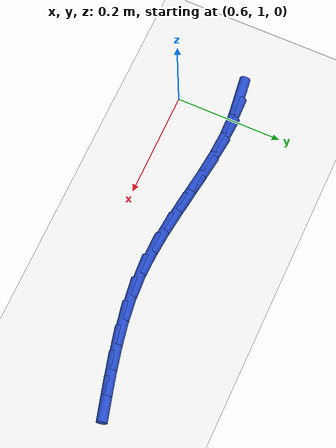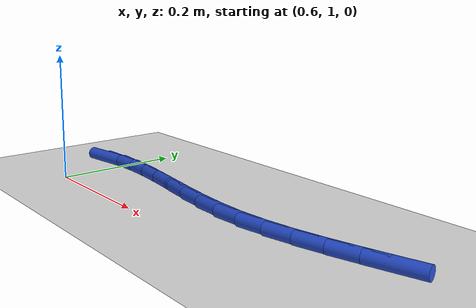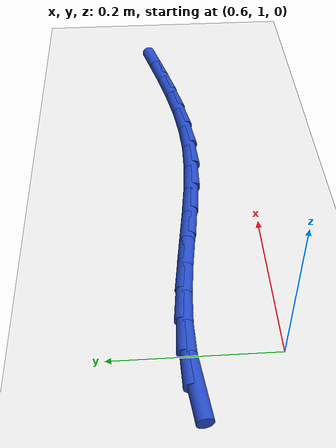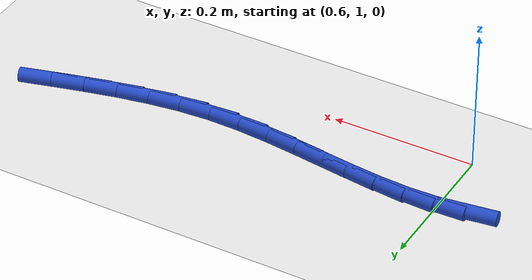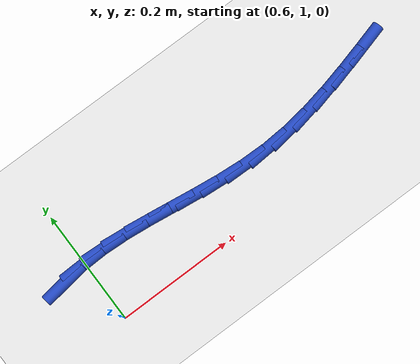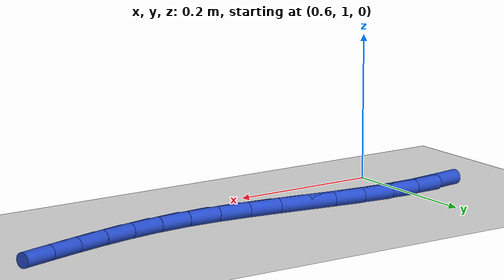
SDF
<sdf version="1.6">
 <world name="default">
  <model name="ground_plane">
   <static>1</static>
   <link name="link">
    <collision name="collision">
     <geometry><plane><normal>0 0 1</normal><size>100 100</size></plane></geometry>
     <surface><friction><ode><mu>100</mu><mu2>50</mu2></ode></friction></surface>
    </collision>
    <visual name="visual">
     <cast_shadows>0</cast_shadows>
     <geometry><plane><normal>0 0 1</normal><size>100 100</size></plane></geometry>
     <material>
      <script><uri>file://media/materials/scripts/gazebo.material</uri><name>Gazebo/WhiteGlow</name></script>
     </material>
    </visual>
   </link>
  </model>
  <model name="line">
   <link name="link_30">
    <pose>0.5562066526863165 1.1021068621475054 0.01 0 1.57 0.13876813090118184</pose>
    <collision name="collision">
     <geometry><cylinder><radius>0.01</radius><length>0.08</length></cylinder></geometry>
    </collision>
    <visual name="visual">
     <material>
      <script><name>Gazebo/Blue</name><uri>file://media/materials/scripts/gazebo.material</uri></script>
     </material>
     <geometry><cylinder><radius>0.01</radius><length>0.08</length></cylinder></geometry>
    </visual>
   </link>
   <link name="link_31">
    <pose>0.5963904752602469 1.1077191670569437 0.01 0 1.57 0.029384992090393188</pose>
    <collision name="collision">
     <geometry><cylinder><radius>0.01</radius><length>0.08</length></cylinder></geometry>
    </collision>
    <visual name="visual">
     <material>
      <script><name>Gazebo/Blue</name><uri>file://media/materials/scripts/gazebo.material</uri></script>
     </material>
     <geometry><cylinder><radius>0.01</radius><length>0.08</length></cylinder></geometry>
    </visual>
   </link>
   <link name="link_32">
    <pose>0.637595639609872 1.108930329109342 0.01 0 1.57 -0.05121354719147642</pose>
    <collision name="collision">
     <geometry><cylinder><radius>0.01</radius><length>0.08</length></cylinder></geometry>
    </collision>
    <visual name="visual">
     <material>
      <script><name>Gazebo/Blue</name><uri>file://media/materials/scripts/gazebo.material</uri></script>
     </material>
     <geometry><cylinder><radius>0.01</radius><length>0.08</length></cylinder></geometry>
    </visual>
   </link>
   <link name="link_33">
    <pose>0.6797044397179012 1.1067719006960488 0.01 0 1.57 -0.10444417231424875</pose>
    <collision name="collision">
     <geometry><cylinder><radius>0.01</radius><length>0.08</length></cylinder></geometry>
    </collision>
    <visual name="visual">
     <material>
      <script><name>Gazebo/Blue</name><uri>file://media/materials/scripts/gazebo.material</uri></script>
     </material>
     <geometry><cylinder><radius>0.01</radius><length>0.08</length></cylinder></geometry>
    </visual>
   </link>
   <link name="link_34">
    <pose>0.7225991695670426 1.102275434208411 0.01 0 1.57 -0.13242879782485945</pose>
    <collision name="collision">
     <geometry><cylinder><radius>0.01</radius><length>0.08</length></cylinder></geometry>
    </collision>
    <visual name="visual">
     <material>
      <script><name>Gazebo/Blue</name><uri>file://media/materials/scripts/gazebo.material</uri></script>
     </material>
     <geometry><cylinder><radius>0.01</radius><length>0.08</length></cylinder></geometry>
    </visual>
   </link>
   <link name="link_35">
    <pose>0.7661621231400063 1.0964724820377765 0.01 0 1.57 -0.13691643023261096</pose>
    <collision name="collision">
     <geometry><cylinder><radius>0.01</radius><length>0.08</length></cylinder></geometry>
    </collision>
    <visual name="visual">
     <material>
      <script><name>Gazebo/Blue</name><uri>file://media/materials/scripts/gazebo.material</uri></script>
     </material>
     <geometry><cylinder><radius>0.01</radius><length>0.08</length></cylinder></geometry>
    </visual>
   </link>
   <link name="link_36">
    <pose>0.8102755944195007 1.0903945965754933 0.01 0 1.57 -0.1188914095847734</pose>
    <collision name="collision">
     <geometry><cylinder><radius>0.01</radius><length>0.08</length></cylinder></geometry>
    </collision>
    <visual name="visual">
     <material>
      <script><name>Gazebo/Blue</name><uri>file://media/materials/scripts/gazebo.material</uri></script>
     </material>
     <geometry><cylinder><radius>0.01</radius><length>0.08</length></cylinder></geometry>
    </visual>
   </link>
   <link name="link_37">
    <pose>0.8548218773882349 1.0850733302129083 0.01 0 1.57 -0.0785935833890232</pose>
    <collision name="collision">
     <geometry><cylinder><radius>0.01</radius><length>0.08</length></cylinder></geometry>
    </collision>
    <visual name="visual">
     <material>
      <script><name>Gazebo/Blue</name><uri>file://media/materials/scripts/gazebo.material</uri></script>
     </material>
     <geometry><cylinder><radius>0.01</radius><length>0.08</length></cylinder></geometry>
    </visual>
   </link>
   <link name="link_38">
    <pose>0.8996832660289179 1.0815402353413701 0.01 0 1.57 -0.01583068303377196</pose>
    <collision name="collision">
     <geometry><cylinder><radius>0.01</radius><length>0.08</length></cylinder></geometry>
    </collision>
    <visual name="visual">
     <material>
      <script><name>Gazebo/Blue</name><uri>file://media/materials/scripts/gazebo.material</uri></script>
     </material>
     <geometry><cylinder><radius>0.01</radius><length>0.08</length></cylinder></geometry>
    </visual>
   </link>
   <link name="link_39">
    <pose>0.9447420543242586 1.0808268643522256 0.01 0 1.57 0.06521968606140681</pose>
    <collision name="collision">
     <geometry><cylinder><radius>0.01</radius><length>0.08</length></cylinder></geometry>
    </collision>
    <visual name="visual">
     <material>
      <script><name>Gazebo/Blue</name><uri>file://media/materials/scripts/gazebo.material</uri></script>
     </material>
     <geometry><cylinder><radius>0.01</radius><length>0.08</length></cylinder></geometry>
    </visual>
   </link>
   <link name="link_40">
    <pose>0.9898814048950397 1.0837750199101297 0.01 0 1.57 0.13864147830354148</pose>
    <collision name="collision">
     <geometry><cylinder><radius>0.01</radius><length>0.08</length></cylinder></geometry>
    </collision>
    <visual name="visual">
     <material>
      <script><name>Gazebo/Blue</name><uri>file://media/materials/scripts/gazebo.material</uri></script>
     </material>
     <geometry><cylinder><radius>0.01</radius><length>0.08</length></cylinder></geometry>
    </visual>
   </link>
   <link name="link_41">
    <pose>1.0349897778630974 1.0900692915576036 0.01 0 1.57 0.19515393980822712</pose>
    <collision name="collision">
     <geometry><cylinder><radius>0.01</radius><length>0.08</length></cylinder></geometry>
    </collision>
    <visual name="visual">
     <material>
      <script><name>Gazebo/Blue</name><uri>file://media/materials/scripts/gazebo.material</uri></script>
     </material>
     <geometry><cylinder><radius>0.01</radius><length>0.08</length></cylinder></geometry>
    </visual>
   </link>
   <link name="link_42">
    <pose>1.0799576301581613 1.0989580759467232 0.01 0 1.57 0.23551589524179659</pose>
    <collision name="collision">
     <geometry><cylinder><radius>0.01</radius><length>0.08</length></cylinder></geometry>
    </collision>
    <visual name="visual">
     <material>
      <script><name>Gazebo/Blue</name><uri>file://media/materials/scripts/gazebo.material</uri></script>
     </material>
     <geometry><cylinder><radius>0.01</radius><length>0.08</length></cylinder></geometry>
    </visual>
   </link>
   <link name="link_43">
    <pose>1.1246754223685365 1.1096889705316333 0.01 0 1.57 0.26042876316129226</pose>
    <collision name="collision">
     <geometry><cylinder><radius>0.01</radius><length>0.08</length></cylinder></geometry>
    </collision>
    <visual name="visual">
     <material>
      <script><name>Gazebo/Blue</name><uri>file://media/materials/scripts/gazebo.material</uri></script>
     </material>
     <geometry><cylinder><radius>0.01</radius><length>0.08</length></cylinder></geometry>
    </visual>
   </link>
   <link name="link_44">
    <pose>1.1690336150825291 1.1215095727664806 0.01 0 1.57 0.2702381736349711</pose>
    <collision name="collision">
     <geometry><cylinder><radius>0.01</radius><length>0.08</length></cylinder></geometry>
    </collision>
    <visual name="visual">
     <material>
      <script><name>Gazebo/Blue</name><uri>file://media/materials/scripts/gazebo.material</uri></script>
     </material>
     <geometry><cylinder><radius>0.01</radius><length>0.08</length></cylinder></geometry>
    </visual>
   </link>
  </model>
 </world>
</sdf>
